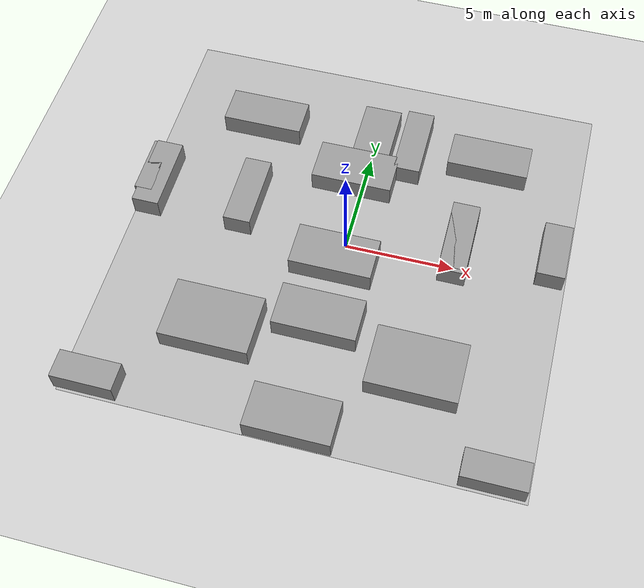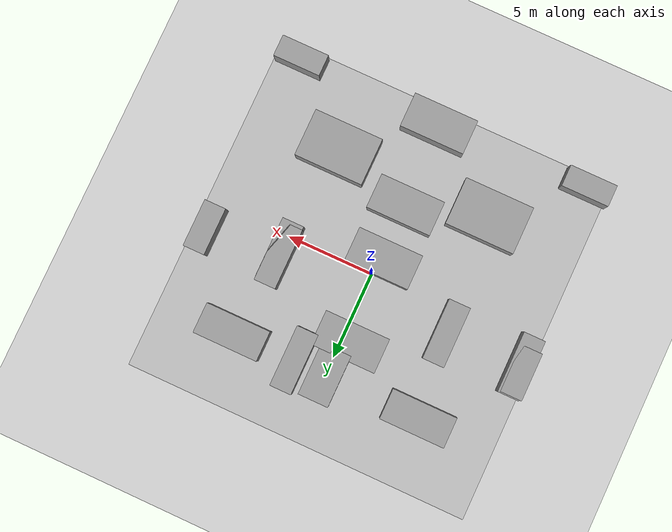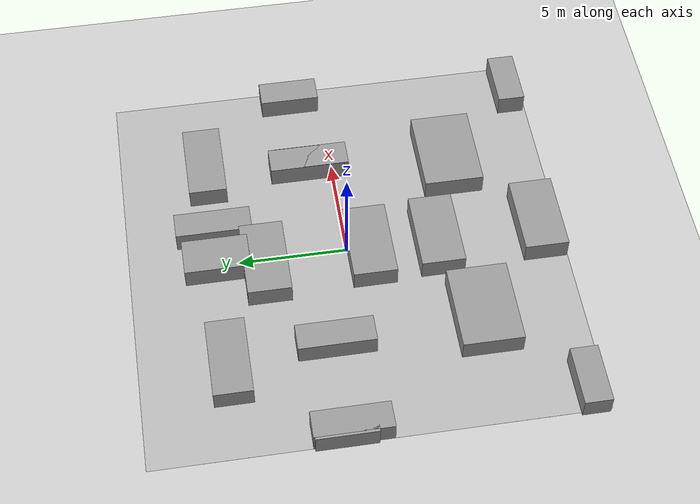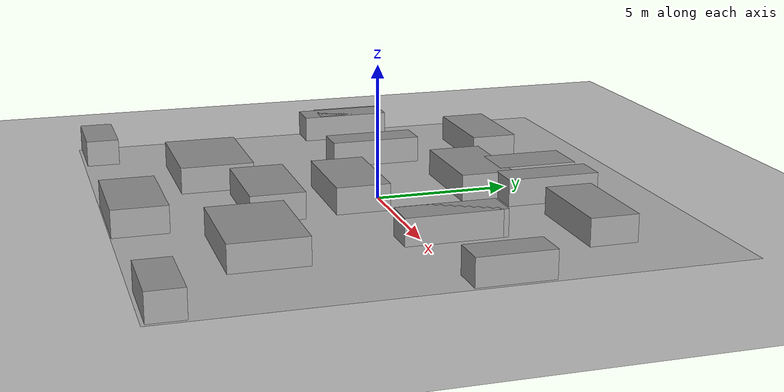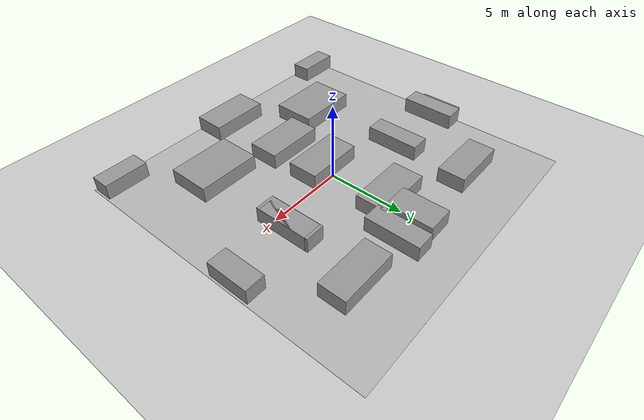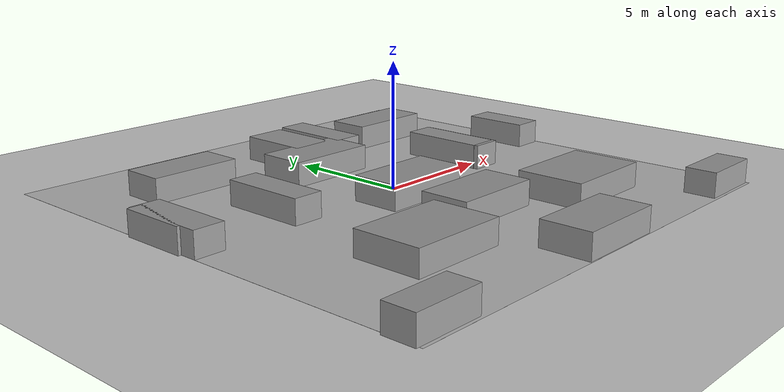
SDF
<sdf version="1.6">
 <world name="default">
  <scene><shadows>0</shadows><ambient>0.4 0.4 0.4 1</ambient><background>0.7 0.7 0.7 1</background></scene>
  <light name="sun" type="directional">
   <cast_shadows>0</cast_shadows>
   <pose>0 0 5 0 -0 0</pose>
   <diffuse>0.8 0.8 0.8 1</diffuse>
   <specular>0.1 0.1 0.1 1</specular>
   <attenuation>
    <range>1000</range>
    <constant>0.9</constant>
    <linear>0.01</linear>
    <quadratic>0.001</quadratic>
   </attenuation>
   <direction>-0.5 0.5 -1</direction>
  </light>
  <physics name="default_physics" default="0" type="ode">
   <max_step_size>0.001</max_step_size>
   <real_time_factor>1</real_time_factor>
   <real_time_update_rate>1000</real_time_update_rate>
  </physics>
  <scene><ambient>0.4 0.4 0.4 1</ambient><background>0.7 0.7 0.7 1</background><shadows>1</shadows></scene>
  <spherical_coordinates>
   <surface_model>EARTH_WGS84</surface_model>
   <latitude_deg>0</latitude_deg>
   <longitude_deg>0</longitude_deg>
   <elevation>0</elevation>
   <heading_deg>0</heading_deg>
  </spherical_coordinates>
  <model name="ground_plane">
   <static>1</static>
   <link name="link">
    <collision name="collision">
     <geometry><plane><normal>0 0 1</normal><size>100 100</size></plane></geometry>
     <surface><friction><ode><mu>1</mu><mu2>1</mu2></ode></friction></surface>
    </collision>
    <visual name="visual">
     <cast_shadows>0</cast_shadows>
     <geometry><plane><normal>0 0 1</normal><size>100 100</size></plane></geometry>
     <material>
      <script><uri>file://media/materials/scripts/gazebo.material</uri><name>Gazebo/Grey</name></script>
     </material>
    </visual>
    <velocity_decay><linear>0</linear><angular>0</angular></velocity_decay>
   </link>
  </model>
  <gravity>0 0 -9.8</gravity>
  <magnetic_field>6e-06 2.3e-05 -4.2e-05</magnetic_field>
  <atmosphere type="adiabatic"/>
  <model name="Floor_room">
   <link name="main">
    <pose>0 0 0.01 0 -0 0</pose>
    <collision name="main_Collision">
     <geometry><box><size>20 20 0.001</size></box></geometry>
     <surface>
      <friction>
       <ode><mu>100</mu><mu2>50</mu2></ode>
       <torsional>
        <coefficient>1</coefficient>
        <surface_radius>0.5</surface_radius>
        <use_patch_radius>0</use_patch_radius>
       </torsional>
      </friction>
     </surface>
    </collision>
    <visual name="main_Visual">
     <geometry><box><size>20 20 0.001</size></box></geometry>
     <material>
      <script>
       <uri>model://Floor_room/materials/scripts</uri>
       <uri>model://Floor_room/materials/textures</uri>
       <name>floor_room</name>
      </script>
     </material>
    </visual>
   </link>
   <static>1</static>
  </model>
  <model name="unit_box_0_0_0_0_0">
   <link name="link">
    <inertial>
     <mass>1</mass>
     <inertia>
      <ixx>0.166667</ixx>
      <ixy>0</ixy>
      <ixz>0</ixz>
      <iyy>0.166667</iyy>
      <iyz>0</iyz>
      <izz>0.166667</izz>
     </inertia>
    </inertial>
    <visual name="visual">
     <geometry><box><size>1.25 3.5 1</size></box></geometry>
     <material>
      <script><name>Gazebo/Grey</name><uri>file://media/materials/scripts/gazebo.material</uri></script>
      <ambient>0.3 0.3 0.3 1</ambient>
      <diffuse>0.7 0.7 0.7 1</diffuse>
      <specular>0.01 0.01 0.01 1</specular>
      <emissive>0 0 0 1</emissive>
      <shader type="vertex"><normal_map>__default__</normal_map></shader>
     </material>
    </visual>
    <collision name="collision">
     <geometry><box><size>1.25 3.5 1</size></box></geometry>
     <surface>
      <friction>
       <ode><mu>1</mu><mu2>1</mu2><fdir1>0 0 0</fdir1><slip1>0</slip1><slip2>0</slip2></ode>
       <torsional>
        <coefficient>1</coefficient>
        <patch_radius>0</patch_radius>
        <surface_radius>0</surface_radius>
        <use_patch_radius>1</use_patch_radius>
        <ode><slip>0</slip></ode>
       </torsional>
      </friction>
      <bounce><restitution_coefficient>0</restitution_coefficient><threshold>1e+06</threshold></bounce>
      <contact>
       <collide_without_contact>0</collide_without_contact>
       <collide_without_contact_bitmask>1</collide_without_contact_bitmask>
       <collide_bitmask>1</collide_bitmask>
       <ode>
        <soft_cfm>0</soft_cfm>
        <soft_erp>0.2</soft_erp>
        <kp>1e+13</kp>
        <kd>1</kd>
        <max_vel>0.01</max_vel>
        <min_depth>0</min_depth>
       </ode>
       <bullet>
        <split_impulse>1</split_impulse>
        <split_impulse_penetration_threshold>-0.01</split_impulse_penetration_threshold>
        <soft_cfm>0</soft_cfm>
        <soft_erp>0.2</soft_erp>
        <kp>1e+13</kp>
        <kd>1</kd>
       </bullet>
      </contact>
     </surface>
    </collision>
   </link>
   <static>1</static>
   <pose>-5 1.25 0.5105 0 -0 0</pose>
  </model>
  <model name="unit_box_0_0_0_0_0_clone_0">
   <link name="link">
    <inertial>
     <mass>1</mass>
     <inertia>
      <ixx>0.166667</ixx>
      <ixy>0</ixy>
      <ixz>0</ixz>
      <iyy>0.166667</iyy>
      <iyz>0</iyz>
      <izz>0.166667</izz>
     </inertia>
    </inertial>
    <visual name="visual">
     <geometry><box><size>1.75 3.75 1</size></box></geometry>
     <material>
      <script><name>Gazebo/Grey</name><uri>file://media/materials/scripts/gazebo.material</uri></script>
      <ambient>0.3 0.3 0.3 1</ambient>
      <diffuse>0.7 0.7 0.7 1</diffuse>
      <specular>0.01 0.01 0.01 1</specular>
      <emissive>0 0 0 1</emissive>
      <shader type="vertex"><normal_map>__default__</normal_map></shader>
     </material>
    </visual>
    <collision name="collision">
     <geometry><box><size>1.25 3.5 1</size></box></geometry>
     <surface>
      <friction>
       <ode><mu>1</mu><mu2>1</mu2><fdir1>0 0 0</fdir1><slip1>0</slip1><slip2>0</slip2></ode>
       <torsional>
        <coefficient>1</coefficient>
        <patch_radius>0</patch_radius>
        <surface_radius>0</surface_radius>
        <use_patch_radius>1</use_patch_radius>
        <ode><slip>0</slip></ode>
       </torsional>
      </friction>
      <bounce><restitution_coefficient>0</restitution_coefficient><threshold>1e+06</threshold></bounce>
      <contact>
       <collide_without_contact>0</collide_without_contact>
       <collide_without_contact_bitmask>1</collide_without_contact_bitmask>
       <collide_bitmask>1</collide_bitmask>
       <ode>
        <soft_cfm>0</soft_cfm>
        <soft_erp>0.2</soft_erp>
        <kp>1e+13</kp>
        <kd>1</kd>
        <max_vel>0.01</max_vel>
        <min_depth>0</min_depth>
       </ode>
       <bullet>
        <split_impulse>1</split_impulse>
        <split_impulse_penetration_threshold>-0.01</split_impulse_penetration_threshold>
        <soft_cfm>0</soft_cfm>
        <soft_erp>0.2</soft_erp>
        <kp>1e+13</kp>
        <kd>1</kd>
       </bullet>
      </contact>
     </surface>
    </collision>
   </link>
   <static>1</static>
   <pose>-5.5 6 0.5105 0 -0 1.5708</pose>
  </model>
  <model name="unit_box_0_0_0_0_0_clone">
   <link name="link">
    <inertial>
     <mass>1</mass>
     <inertia>
      <ixx>0.166667</ixx>
      <ixy>0</ixy>
      <ixz>0</ixz>
      <iyy>0.166667</iyy>
      <iyz>0</iyz>
      <izz>0.166667</izz>
     </inertia>
    </inertial>
    <visual name="visual">
     <geometry><box><size>1.25 3.5 1</size></box></geometry>
     <material>
      <script><name>Gazebo/Grey</name><uri>file://media/materials/scripts/gazebo.material</uri></script>
      <ambient>0.3 0.3 0.3 1</ambient>
      <diffuse>0.7 0.7 0.7 1</diffuse>
      <specular>0.01 0.01 0.01 1</specular>
      <emissive>0 0 0 1</emissive>
      <shader type="vertex"><normal_map>__default__</normal_map></shader>
     </material>
    </visual>
    <collision name="collision">
     <geometry><box><size>1.25 3.5 1</size></box></geometry>
     <surface>
      <friction>
       <ode><mu>1</mu><mu2>1</mu2><fdir1>0 0 0</fdir1><slip1>0</slip1><slip2>0</slip2></ode>
       <torsional>
        <coefficient>1</coefficient>
        <patch_radius>0</patch_radius>
        <surface_radius>0</surface_radius>
        <use_patch_radius>1</use_patch_radius>
        <ode><slip>0</slip></ode>
       </torsional>
      </friction>
      <bounce><restitution_coefficient>0</restitution_coefficient><threshold>1e+06</threshold></bounce>
      <contact>
       <collide_without_contact>0</collide_without_contact>
       <collide_without_contact_bitmask>1</collide_without_contact_bitmask>
       <collide_bitmask>1</collide_bitmask>
       <ode>
        <soft_cfm>0</soft_cfm>
        <soft_erp>0.2</soft_erp>
        <kp>1e+13</kp>
        <kd>1</kd>
        <max_vel>0.01</max_vel>
        <min_depth>0</min_depth>
       </ode>
       <bullet>
        <split_impulse>1</split_impulse>
        <split_impulse_penetration_threshold>-0.01</split_impulse_penetration_threshold>
        <soft_cfm>0</soft_cfm>
        <soft_erp>0.2</soft_erp>
        <kp>1e+13</kp>
        <kd>1</kd>
       </bullet>
      </contact>
     </surface>
    </collision>
   </link>
   <static>1</static>
   <pose>-9.37656 1.19117 0.5105 0 -0 0</pose>
  </model>
  <model name="unit_box_0_0_0_0_0_clone_1_0_0">
   <link name="link">
    <inertial>
     <mass>1</mass>
     <inertia>
      <ixx>0.166667</ixx>
      <ixy>0</ixy>
      <ixz>0</ixz>
      <iyy>0.166667</iyy>
      <iyz>0</iyz>
      <izz>0.166667</izz>
     </inertia>
    </inertial>
    <visual name="visual">
     <geometry><box><size>1.25 2.75 1</size></box></geometry>
     <material>
      <script><name>Gazebo/Grey</name><uri>file://media/materials/scripts/gazebo.material</uri></script>
      <ambient>0.3 0.3 0.3 1</ambient>
      <diffuse>0.7 0.7 0.7 1</diffuse>
      <specular>0.01 0.01 0.01 1</specular>
      <emissive>0 0 0 1</emissive>
      <shader type="vertex"><normal_map>__default__</normal_map></shader>
     </material>
    </visual>
    <collision name="collision">
     <geometry><box><size>1.25 2.75 1</size></box></geometry>
     <surface>
      <friction>
       <ode><mu>1</mu><mu2>1</mu2><fdir1>0 0 0</fdir1><slip1>0</slip1><slip2>0</slip2></ode>
       <torsional>
        <coefficient>1</coefficient>
        <patch_radius>0</patch_radius>
        <surface_radius>0</surface_radius>
        <use_patch_radius>1</use_patch_radius>
        <ode><slip>0</slip></ode>
       </torsional>
      </friction>
      <bounce><restitution_coefficient>0</restitution_coefficient><threshold>1e+06</threshold></bounce>
      <contact>
       <collide_without_contact>0</collide_without_contact>
       <collide_without_contact_bitmask>1</collide_without_contact_bitmask>
       <collide_bitmask>1</collide_bitmask>
       <ode>
        <soft_cfm>0</soft_cfm>
        <soft_erp>0.2</soft_erp>
        <kp>1e+13</kp>
        <kd>1</kd>
        <max_vel>0.01</max_vel>
        <min_depth>0</min_depth>
       </ode>
       <bullet>
        <split_impulse>1</split_impulse>
        <split_impulse_penetration_threshold>-0.01</split_impulse_penetration_threshold>
        <soft_cfm>0</soft_cfm>
        <soft_erp>0.2</soft_erp>
        <kp>1e+13</kp>
        <kd>1</kd>
       </bullet>
      </contact>
     </surface>
    </collision>
   </link>
   <static>1</static>
   <pose>-9.5 1.5 0.5105 0 -0 0</pose>
  </model>
  <model name="unit_box_0_0_0_0_0_clone_1">
   <link name="link">
    <inertial>
     <mass>1</mass>
     <inertia>
      <ixx>0.166667</ixx>
      <ixy>0</ixy>
      <ixz>0</ixz>
      <iyy>0.166667</iyy>
      <iyz>0</iyz>
      <izz>0.166667</izz>
     </inertia>
    </inertial>
    <visual name="visual">
     <geometry><box><size>1.25 3.5 1</size></box></geometry>
     <material>
      <script><name>Gazebo/Grey</name><uri>file://media/materials/scripts/gazebo.material</uri></script>
      <ambient>0.3 0.3 0.3 1</ambient>
      <diffuse>0.7 0.7 0.7 1</diffuse>
      <specular>0.01 0.01 0.01 1</specular>
      <emissive>0 0 0 1</emissive>
      <shader type="vertex"><normal_map>__default__</normal_map></shader>
     </material>
    </visual>
    <collision name="collision">
     <geometry><box><size>1.25 3.5 1</size></box></geometry>
     <surface>
      <friction>
       <ode><mu>1</mu><mu2>1</mu2><fdir1>0 0 0</fdir1><slip1>0</slip1><slip2>0</slip2></ode>
       <torsional>
        <coefficient>1</coefficient>
        <patch_radius>0</patch_radius>
        <surface_radius>0</surface_radius>
        <use_patch_radius>1</use_patch_radius>
        <ode><slip>0</slip></ode>
       </torsional>
      </friction>
      <bounce><restitution_coefficient>0</restitution_coefficient><threshold>1e+06</threshold></bounce>
      <contact>
       <collide_without_contact>0</collide_without_contact>
       <collide_without_contact_bitmask>1</collide_without_contact_bitmask>
       <collide_bitmask>1</collide_bitmask>
       <ode>
        <soft_cfm>0</soft_cfm>
        <soft_erp>0.2</soft_erp>
        <kp>1e+13</kp>
        <kd>1</kd>
        <max_vel>0.01</max_vel>
        <min_depth>0</min_depth>
       </ode>
       <bullet>
        <split_impulse>1</split_impulse>
        <split_impulse_penetration_threshold>-0.01</split_impulse_penetration_threshold>
        <soft_cfm>0</soft_cfm>
        <soft_erp>0.2</soft_erp>
        <kp>1e+13</kp>
        <kd>1</kd>
       </bullet>
      </contact>
     </surface>
    </collision>
   </link>
   <static>1</static>
   <pose>1.8244 5.96359 0.5105 0 -0 0</pose>
  </model>
  <model name="unit_box_0_0_0_0_0_clone_2_0">
   <link name="link">
    <inertial>
     <mass>1</mass>
     <inertia>
      <ixx>0.166667</ixx>
      <ixy>0</ixy>
      <ixz>0</ixz>
      <iyy>0.166667</iyy>
      <iyz>0</iyz>
      <izz>0.166667</izz>
     </inertia>
    </inertial>
    <visual name="visual">
     <geometry><box><size>1.75 3 1</size></box></geometry>
     <material>
      <script><name>Gazebo/Grey</name><uri>file://media/materials/scripts/gazebo.material</uri></script>
      <ambient>0.3 0.3 0.3 1</ambient>
      <diffuse>0.7 0.7 0.7 1</diffuse>
      <specular>0.01 0.01 0.01 1</specular>
      <emissive>0 0 0 1</emissive>
      <shader type="vertex"><normal_map>__default__</normal_map></shader>
     </material>
    </visual>
    <collision name="collision">
     <geometry><box><size>1.75 3 1</size></box></geometry>
     <surface>
      <friction>
       <ode><mu>1</mu><mu2>1</mu2><fdir1>0 0 0</fdir1><slip1>0</slip1><slip2>0</slip2></ode>
       <torsional>
        <coefficient>1</coefficient>
        <patch_radius>0</patch_radius>
        <surface_radius>0</surface_radius>
        <use_patch_radius>1</use_patch_radius>
        <ode><slip>0</slip></ode>
       </torsional>
      </friction>
      <bounce><restitution_coefficient>0</restitution_coefficient><threshold>1e+06</threshold></bounce>
      <contact>
       <collide_without_contact>0</collide_without_contact>
       <collide_without_contact_bitmask>1</collide_without_contact_bitmask>
       <collide_bitmask>1</collide_bitmask>
       <ode>
        <soft_cfm>0</soft_cfm>
        <soft_erp>0.2</soft_erp>
        <kp>1e+13</kp>
        <kd>1</kd>
        <max_vel>0.01</max_vel>
        <min_depth>0</min_depth>
       </ode>
       <bullet>
        <split_impulse>1</split_impulse>
        <split_impulse_penetration_threshold>-0.01</split_impulse_penetration_threshold>
        <soft_cfm>0</soft_cfm>
        <soft_erp>0.2</soft_erp>
        <kp>1e+13</kp>
        <kd>1</kd>
       </bullet>
      </contact>
     </surface>
    </collision>
   </link>
   <static>1</static>
   <pose>0 6 0.5105 0 -0 0</pose>
  </model>
  <model name="unit_box_0_0_0_0_0_clone_0_clone">
   <link name="link">
    <inertial>
     <mass>1</mass>
     <inertia>
      <ixx>0.166667</ixx>
      <ixy>0</ixy>
      <ixz>0</ixz>
      <iyy>0.166667</iyy>
      <iyz>0</iyz>
      <izz>0.166667</izz>
     </inertia>
    </inertial>
    <visual name="visual">
     <geometry><box><size>1.75 3.75 1</size></box></geometry>
     <material>
      <script><name>Gazebo/Grey</name><uri>file://media/materials/scripts/gazebo.material</uri></script>
      <ambient>0.3 0.3 0.3 1</ambient>
      <diffuse>0.7 0.7 0.7 1</diffuse>
      <specular>0.01 0.01 0.01 1</specular>
      <emissive>0 0 0 1</emissive>
      <shader type="vertex"><normal_map>__default__</normal_map></shader>
     </material>
    </visual>
    <collision name="collision">
     <geometry><box><size>1.25 3.5 1</size></box></geometry>
     <surface>
      <friction>
       <ode><mu>1</mu><mu2>1</mu2><fdir1>0 0 0</fdir1><slip1>0</slip1><slip2>0</slip2></ode>
       <torsional>
        <coefficient>1</coefficient>
        <patch_radius>0</patch_radius>
        <surface_radius>0</surface_radius>
        <use_patch_radius>1</use_patch_radius>
        <ode><slip>0</slip></ode>
       </torsional>
      </friction>
      <bounce><restitution_coefficient>0</restitution_coefficient><threshold>1e+06</threshold></bounce>
      <contact>
       <collide_without_contact>0</collide_without_contact>
       <collide_without_contact_bitmask>1</collide_without_contact_bitmask>
       <collide_bitmask>1</collide_bitmask>
       <ode>
        <soft_cfm>0</soft_cfm>
        <soft_erp>0.2</soft_erp>
        <kp>1e+13</kp>
        <kd>1</kd>
        <max_vel>0.01</max_vel>
        <min_depth>0</min_depth>
       </ode>
       <bullet>
        <split_impulse>1</split_impulse>
        <split_impulse_penetration_threshold>-0.01</split_impulse_penetration_threshold>
        <soft_cfm>0</soft_cfm>
        <soft_erp>0.2</soft_erp>
        <kp>1e+13</kp>
        <kd>1</kd>
       </bullet>
      </contact>
     </surface>
    </collision>
   </link>
   <static>1</static>
   <pose>5.5 6 0.5105 0 -0 1.5708</pose>
  </model>
  <model name="unit_box_0_0_0_0_0_clone_1_0_0_clone">
   <link name="link">
    <inertial>
     <mass>1</mass>
     <inertia>
      <ixx>0.166667</ixx>
      <ixy>0</ixy>
      <ixz>0</ixz>
      <iyy>0.166667</iyy>
      <iyz>0</iyz>
      <izz>0.166667</izz>
     </inertia>
    </inertial>
    <visual name="visual">
     <geometry><box><size>1.25 2.75 1</size></box></geometry>
     <material>
      <script><name>Gazebo/Grey</name><uri>file://media/materials/scripts/gazebo.material</uri></script>
      <ambient>0.3 0.3 0.3 1</ambient>
      <diffuse>0.7 0.7 0.7 1</diffuse>
      <specular>0.01 0.01 0.01 1</specular>
      <emissive>0 0 0 1</emissive>
      <shader type="vertex"><normal_map>__default__</normal_map></shader>
     </material>
    </visual>
    <collision name="collision">
     <geometry><box><size>1.25 2.75 1</size></box></geometry>
     <surface>
      <friction>
       <ode><mu>1</mu><mu2>1</mu2><fdir1>0 0 0</fdir1><slip1>0</slip1><slip2>0</slip2></ode>
       <torsional>
        <coefficient>1</coefficient>
        <patch_radius>0</patch_radius>
        <surface_radius>0</surface_radius>
        <use_patch_radius>1</use_patch_radius>
        <ode><slip>0</slip></ode>
       </torsional>
      </friction>
      <bounce><restitution_coefficient>0</restitution_coefficient><threshold>1e+06</threshold></bounce>
      <contact>
       <collide_without_contact>0</collide_without_contact>
       <collide_without_contact_bitmask>1</collide_without_contact_bitmask>
       <collide_bitmask>1</collide_bitmask>
       <ode>
        <soft_cfm>0</soft_cfm>
        <soft_erp>0.2</soft_erp>
        <kp>1e+13</kp>
        <kd>1</kd>
        <max_vel>0.01</max_vel>
        <min_depth>0</min_depth>
       </ode>
       <bullet>
        <split_impulse>1</split_impulse>
        <split_impulse_penetration_threshold>-0.01</split_impulse_penetration_threshold>
        <soft_cfm>0</soft_cfm>
        <soft_erp>0.2</soft_erp>
        <kp>1e+13</kp>
        <kd>1</kd>
       </bullet>
      </contact>
     </surface>
    </collision>
   </link>
   <static>1</static>
   <pose>9.25 1.5 0.5105 0 -0 0</pose>
  </model>
  <model name="unit_box_0_0_0_0_0_clone_2">
   <link name="link">
    <inertial>
     <mass>1</mass>
     <inertia>
      <ixx>0.166667</ixx>
      <ixy>0</ixy>
      <ixz>0</ixz>
      <iyy>0.166667</iyy>
      <iyz>0</iyz>
      <izz>0.166667</izz>
     </inertia>
    </inertial>
    <visual name="visual">
     <geometry><box><size>1.25 3.5 1</size></box></geometry>
     <material>
      <script><name>Gazebo/Grey</name><uri>file://media/materials/scripts/gazebo.material</uri></script>
      <ambient>0.3 0.3 0.3 1</ambient>
      <diffuse>0.7 0.7 0.7 1</diffuse>
      <specular>0.01 0.01 0.01 1</specular>
      <emissive>0 0 0 1</emissive>
      <shader type="vertex"><normal_map>__default__</normal_map></shader>
     </material>
    </visual>
    <collision name="collision">
     <geometry><box><size>1.25 3.5 1</size></box></geometry>
     <surface>
      <friction>
       <ode><mu>1</mu><mu2>1</mu2><fdir1>0 0 0</fdir1><slip1>0</slip1><slip2>0</slip2></ode>
       <torsional>
        <coefficient>1</coefficient>
        <patch_radius>0</patch_radius>
        <surface_radius>0</surface_radius>
        <use_patch_radius>1</use_patch_radius>
        <ode><slip>0</slip></ode>
       </torsional>
      </friction>
      <bounce><restitution_coefficient>0</restitution_coefficient><threshold>1e+06</threshold></bounce>
      <contact>
       <collide_without_contact>0</collide_without_contact>
       <collide_without_contact_bitmask>1</collide_without_contact_bitmask>
       <collide_bitmask>1</collide_bitmask>
       <ode>
        <soft_cfm>0</soft_cfm>
        <soft_erp>0.2</soft_erp>
        <kp>1e+13</kp>
        <kd>1</kd>
        <max_vel>0.01</max_vel>
        <min_depth>0</min_depth>
       </ode>
       <bullet>
        <split_impulse>1</split_impulse>
        <split_impulse_penetration_threshold>-0.01</split_impulse_penetration_threshold>
        <soft_cfm>0</soft_cfm>
        <soft_erp>0.2</soft_erp>
        <kp>1e+13</kp>
        <kd>1</kd>
       </bullet>
      </contact>
     </surface>
    </collision>
   </link>
   <static>1</static>
   <pose>4.986 1.1916 0.5105 0 -0 0</pose>
  </model>
  <model name="unit_box_0_0_0_0_0_clone_3">
   <link name="link">
    <inertial>
     <mass>1</mass>
     <inertia>
      <ixx>0.166667</ixx>
      <ixy>0</ixy>
      <ixz>0</ixz>
      <iyy>0.166667</iyy>
      <iyz>0</iyz>
      <izz>0.166667</izz>
     </inertia>
    </inertial>
    <visual name="visual">
     <geometry><box><size>1.25 3.5 1</size></box></geometry>
     <material>
      <script><name>Gazebo/Grey</name><uri>file://media/materials/scripts/gazebo.material</uri></script>
      <ambient>0.3 0.3 0.3 1</ambient>
      <diffuse>0.7 0.7 0.7 1</diffuse>
      <specular>0.01 0.01 0.01 1</specular>
      <emissive>0 0 0 1</emissive>
      <shader type="vertex"><normal_map>__default__</normal_map></shader>
     </material>
    </visual>
    <collision name="collision">
     <geometry><box><size>1.25 3.5 1</size></box></geometry>
     <surface>
      <friction>
       <ode><mu>1</mu><mu2>1</mu2><fdir1>0 0 0</fdir1><slip1>0</slip1><slip2>0</slip2></ode>
       <torsional>
        <coefficient>1</coefficient>
        <patch_radius>0</patch_radius>
        <surface_radius>0</surface_radius>
        <use_patch_radius>1</use_patch_radius>
        <ode><slip>0</slip></ode>
       </torsional>
      </friction>
      <bounce><restitution_coefficient>0</restitution_coefficient><threshold>1e+06</threshold></bounce>
      <contact>
       <collide_without_contact>0</collide_without_contact>
       <collide_without_contact_bitmask>1</collide_without_contact_bitmask>
       <collide_bitmask>1</collide_bitmask>
       <ode>
        <soft_cfm>0</soft_cfm>
        <soft_erp>0.2</soft_erp>
        <kp>1e+13</kp>
        <kd>1</kd>
        <max_vel>0.01</max_vel>
        <min_depth>0</min_depth>
       </ode>
       <bullet>
        <split_impulse>1</split_impulse>
        <split_impulse_penetration_threshold>-0.01</split_impulse_penetration_threshold>
        <soft_cfm>0</soft_cfm>
        <soft_erp>0.2</soft_erp>
        <kp>1e+13</kp>
        <kd>1</kd>
       </bullet>
      </contact>
     </surface>
    </collision>
   </link>
   <static>1</static>
   <pose>5 1 0.5105 0 -0 0</pose>
  </model>
  <model name="unit_box_0_0_0_0_0_clone_0_clone_clone_0">
   <link name="link">
    <inertial>
     <mass>1</mass>
     <inertia>
      <ixx>0.166667</ixx>
      <ixy>0</ixy>
      <ixz>0</ixz>
      <iyy>0.166667</iyy>
      <iyz>0</iyz>
      <izz>0.166667</izz>
     </inertia>
    </inertial>
    <visual name="visual">
     <geometry><box><size>2 3.75 1</size></box></geometry>
     <material>
      <script><name>Gazebo/Grey</name><uri>file://media/materials/scripts/gazebo.material</uri></script>
      <ambient>0.3 0.3 0.3 1</ambient>
      <diffuse>0.7 0.7 0.7 1</diffuse>
      <specular>0.01 0.01 0.01 1</specular>
      <emissive>0 0 0 1</emissive>
      <shader type="vertex"><normal_map>__default__</normal_map></shader>
     </material>
    </visual>
    <collision name="collision">
     <geometry><box><size>2 3.75 1</size></box></geometry>
     <surface>
      <friction>
       <ode><mu>1</mu><mu2>1</mu2><fdir1>0 0 0</fdir1><slip1>0</slip1><slip2>0</slip2></ode>
       <torsional>
        <coefficient>1</coefficient>
        <patch_radius>0</patch_radius>
        <surface_radius>0</surface_radius>
        <use_patch_radius>1</use_patch_radius>
        <ode><slip>0</slip></ode>
       </torsional>
      </friction>
      <bounce><restitution_coefficient>0</restitution_coefficient><threshold>1e+06</threshold></bounce>
      <contact>
       <collide_without_contact>0</collide_without_contact>
       <collide_without_contact_bitmask>1</collide_without_contact_bitmask>
       <collide_bitmask>1</collide_bitmask>
       <ode>
        <soft_cfm>0</soft_cfm>
        <soft_erp>0.2</soft_erp>
        <kp>1e+13</kp>
        <kd>1</kd>
        <max_vel>0.01</max_vel>
        <min_depth>0</min_depth>
       </ode>
       <bullet>
        <split_impulse>1</split_impulse>
        <split_impulse_penetration_threshold>-0.01</split_impulse_penetration_threshold>
        <soft_cfm>0</soft_cfm>
        <soft_erp>0.2</soft_erp>
        <kp>1e+13</kp>
        <kd>1</kd>
       </bullet>
      </contact>
     </surface>
    </collision>
   </link>
   <static>1</static>
   <pose>-0.25 -1 0.5105 0 -0 1.5708</pose>
  </model>
  <model name="unit_box_0_0_0_0_0_clone_0_clone_clone_0_clone_0_0">
   <link name="link">
    <inertial>
     <mass>1</mass>
     <inertia>
      <ixx>0.166667</ixx>
      <ixy>0</ixy>
      <ixz>0</ixz>
      <iyy>0.166667</iyy>
      <iyz>0</iyz>
      <izz>0.166667</izz>
     </inertia>
    </inertial>
    <visual name="visual">
     <geometry><box><size>2.75 4 1</size></box></geometry>
     <material>
      <script><name>Gazebo/Grey</name><uri>file://media/materials/scripts/gazebo.material</uri></script>
      <ambient>0.3 0.3 0.3 1</ambient>
      <diffuse>0.7 0.7 0.7 1</diffuse>
      <specular>0.01 0.01 0.01 1</specular>
      <emissive>0 0 0 1</emissive>
      <shader type="vertex"><normal_map>__default__</normal_map></shader>
     </material>
    </visual>
    <collision name="collision">
     <geometry><box><size>2.75 4 1</size></box></geometry>
     <surface>
      <friction>
       <ode><mu>1</mu><mu2>1</mu2><fdir1>0 0 0</fdir1><slip1>0</slip1><slip2>0</slip2></ode>
       <torsional>
        <coefficient>1</coefficient>
        <patch_radius>0</patch_radius>
        <surface_radius>0</surface_radius>
        <use_patch_radius>1</use_patch_radius>
        <ode><slip>0</slip></ode>
       </torsional>
      </friction>
      <bounce><restitution_coefficient>0</restitution_coefficient><threshold>1e+06</threshold></bounce>
      <contact>
       <collide_without_contact>0</collide_without_contact>
       <collide_without_contact_bitmask>1</collide_without_contact_bitmask>
       <collide_bitmask>1</collide_bitmask>
       <ode>
        <soft_cfm>0</soft_cfm>
        <soft_erp>0.2</soft_erp>
        <kp>1e+13</kp>
        <kd>1</kd>
        <max_vel>0.01</max_vel>
        <min_depth>0</min_depth>
       </ode>
       <bullet>
        <split_impulse>1</split_impulse>
        <split_impulse_penetration_threshold>-0.01</split_impulse_penetration_threshold>
        <soft_cfm>0</soft_cfm>
        <soft_erp>0.2</soft_erp>
        <kp>1e+13</kp>
        <kd>1</kd>
       </bullet>
      </contact>
     </surface>
    </collision>
   </link>
   <static>1</static>
   <pose>4.5 -5.5 0.5105 0 -0 1.5708</pose>
  </model>
  <model name="unit_box_0_0_0_0_0_clone_0_clone_clone_0_clone_0_0_clone">
   <link name="link">
    <inertial>
     <mass>1</mass>
     <inertia>
      <ixx>0.166667</ixx>
      <ixy>0</ixy>
      <ixz>0</ixz>
      <iyy>0.166667</iyy>
      <iyz>0</iyz>
      <izz>0.166667</izz>
     </inertia>
    </inertial>
    <visual name="visual">
     <geometry><box><size>2.75 4 1</size></box></geometry>
     <material>
      <script><name>Gazebo/Grey</name><uri>file://media/materials/scripts/gazebo.material</uri></script>
      <ambient>0.3 0.3 0.3 1</ambient>
      <diffuse>0.7 0.7 0.7 1</diffuse>
      <specular>0.01 0.01 0.01 1</specular>
      <emissive>0 0 0 1</emissive>
      <shader type="vertex"><normal_map>__default__</normal_map></shader>
     </material>
    </visual>
    <collision name="collision">
     <geometry><box><size>2.75 4 1</size></box></geometry>
     <surface>
      <friction>
       <ode><mu>1</mu><mu2>1</mu2><fdir1>0 0 0</fdir1><slip1>0</slip1><slip2>0</slip2></ode>
       <torsional>
        <coefficient>1</coefficient>
        <patch_radius>0</patch_radius>
        <surface_radius>0</surface_radius>
        <use_patch_radius>1</use_patch_radius>
        <ode><slip>0</slip></ode>
       </torsional>
      </friction>
      <bounce><restitution_coefficient>0</restitution_coefficient><threshold>1e+06</threshold></bounce>
      <contact>
       <collide_without_contact>0</collide_without_contact>
       <collide_without_contact_bitmask>1</collide_without_contact_bitmask>
       <collide_bitmask>1</collide_bitmask>
       <ode>
        <soft_cfm>0</soft_cfm>
        <soft_erp>0.2</soft_erp>
        <kp>1e+13</kp>
        <kd>1</kd>
        <max_vel>0.01</max_vel>
        <min_depth>0</min_depth>
       </ode>
       <bullet>
        <split_impulse>1</split_impulse>
        <split_impulse_penetration_threshold>-0.01</split_impulse_penetration_threshold>
        <soft_cfm>0</soft_cfm>
        <soft_erp>0.2</soft_erp>
        <kp>1e+13</kp>
        <kd>1</kd>
       </bullet>
      </contact>
     </surface>
    </collision>
   </link>
   <static>1</static>
   <pose>-4.5 -5.5 0.5105 0 -0 1.5708</pose>
  </model>
  <model name="unit_box_0_0_0_0_0_clone_1_0_0_clone_0">
   <link name="link">
    <inertial>
     <mass>1</mass>
     <inertia>
      <ixx>0.166667</ixx>
      <ixy>0</ixy>
      <ixz>0</ixz>
      <iyy>0.166667</iyy>
      <iyz>0</iyz>
      <izz>0.166667</izz>
     </inertia>
    </inertial>
    <visual name="visual">
     <geometry><box><size>1.25 2.75 1</size></box></geometry>
     <material>
      <script><name>Gazebo/Grey</name><uri>file://media/materials/scripts/gazebo.material</uri></script>
      <ambient>0.3 0.3 0.3 1</ambient>
      <diffuse>0.7 0.7 0.7 1</diffuse>
      <specular>0.01 0.01 0.01 1</specular>
      <emissive>0 0 0 1</emissive>
      <shader type="vertex"><normal_map>__default__</normal_map></shader>
     </material>
    </visual>
    <collision name="collision">
     <geometry><box><size>1.25 2.75 1</size></box></geometry>
     <surface>
      <friction>
       <ode><mu>1</mu><mu2>1</mu2><fdir1>0 0 0</fdir1><slip1>0</slip1><slip2>0</slip2></ode>
       <torsional>
        <coefficient>1</coefficient>
        <patch_radius>0</patch_radius>
        <surface_radius>0</surface_radius>
        <use_patch_radius>1</use_patch_radius>
        <ode><slip>0</slip></ode>
       </torsional>
      </friction>
      <bounce><restitution_coefficient>0</restitution_coefficient><threshold>1e+06</threshold></bounce>
      <contact>
       <collide_without_contact>0</collide_without_contact>
       <collide_without_contact_bitmask>1</collide_without_contact_bitmask>
       <collide_bitmask>1</collide_bitmask>
       <ode>
        <soft_cfm>0</soft_cfm>
        <soft_erp>0.2</soft_erp>
        <kp>1e+13</kp>
        <kd>1</kd>
        <max_vel>0.01</max_vel>
        <min_depth>0</min_depth>
       </ode>
       <bullet>
        <split_impulse>1</split_impulse>
        <split_impulse_penetration_threshold>-0.01</split_impulse_penetration_threshold>
        <soft_cfm>0</soft_cfm>
        <soft_erp>0.2</soft_erp>
        <kp>1e+13</kp>
        <kd>1</kd>
       </bullet>
      </contact>
     </surface>
    </collision>
   </link>
   <static>1</static>
   <pose>-8.75 -9.25 0.5105 0 -0 1.5708</pose>
  </model>
  <model name="unit_box_0_0_0_0_0_clone_1_0_0_clone_0_clone">
   <link name="link">
    <inertial>
     <mass>1</mass>
     <inertia>
      <ixx>0.166667</ixx>
      <ixy>0</ixy>
      <ixz>0</ixz>
      <iyy>0.166667</iyy>
      <iyz>0</iyz>
      <izz>0.166667</izz>
     </inertia>
    </inertial>
    <visual name="visual">
     <geometry><box><size>1.25 2.75 1</size></box></geometry>
     <material>
      <script><name>Gazebo/Grey</name><uri>file://media/materials/scripts/gazebo.material</uri></script>
      <ambient>0.3 0.3 0.3 1</ambient>
      <diffuse>0.7 0.7 0.7 1</diffuse>
      <specular>0.01 0.01 0.01 1</specular>
      <emissive>0 0 0 1</emissive>
      <shader type="vertex"><normal_map>__default__</normal_map></shader>
     </material>
    </visual>
    <collision name="collision">
     <geometry><box><size>1.25 2.75 1</size></box></geometry>
     <surface>
      <friction>
       <ode><mu>1</mu><mu2>1</mu2><fdir1>0 0 0</fdir1><slip1>0</slip1><slip2>0</slip2></ode>
       <torsional>
        <coefficient>1</coefficient>
        <patch_radius>0</patch_radius>
        <surface_radius>0</surface_radius>
        <use_patch_radius>1</use_patch_radius>
        <ode><slip>0</slip></ode>
       </torsional>
      </friction>
      <bounce><restitution_coefficient>0</restitution_coefficient><threshold>1e+06</threshold></bounce>
      <contact>
       <collide_without_contact>0</collide_without_contact>
       <collide_without_contact_bitmask>1</collide_without_contact_bitmask>
       <collide_bitmask>1</collide_bitmask>
       <ode>
        <soft_cfm>0</soft_cfm>
        <soft_erp>0.2</soft_erp>
        <kp>1e+13</kp>
        <kd>1</kd>
        <max_vel>0.01</max_vel>
        <min_depth>0</min_depth>
       </ode>
       <bullet>
        <split_impulse>1</split_impulse>
        <split_impulse_penetration_threshold>-0.01</split_impulse_penetration_threshold>
        <soft_cfm>0</soft_cfm>
        <soft_erp>0.2</soft_erp>
        <kp>1e+13</kp>
        <kd>1</kd>
       </bullet>
      </contact>
     </surface>
    </collision>
   </link>
   <static>1</static>
   <pose>8.5 -9.25 0.5105 0 -0 1.5708</pose>
  </model>
  <model name="unit_box_0_0_0_0_0_clone_0_clone_clone_0_clone">
   <link name="link">
    <inertial>
     <mass>1</mass>
     <inertia>
      <ixx>0.166667</ixx>
      <ixy>0</ixy>
      <ixz>0</ixz>
      <iyy>0.166667</iyy>
      <iyz>0</iyz>
      <izz>0.166667</izz>
     </inertia>
    </inertial>
    <visual name="visual">
     <geometry><box><size>2 3.75 1</size></box></geometry>
     <material>
      <script><name>Gazebo/Grey</name><uri>file://media/materials/scripts/gazebo.material</uri></script>
      <ambient>0.3 0.3 0.3 1</ambient>
      <diffuse>0.7 0.7 0.7 1</diffuse>
      <specular>0.01 0.01 0.01 1</specular>
      <emissive>0 0 0 1</emissive>
      <shader type="vertex"><normal_map>__default__</normal_map></shader>
     </material>
    </visual>
    <collision name="collision">
     <geometry><box><size>2 3.75 1</size></box></geometry>
     <surface>
      <friction>
       <ode><mu>1</mu><mu2>1</mu2><fdir1>0 0 0</fdir1><slip1>0</slip1><slip2>0</slip2></ode>
       <torsional>
        <coefficient>1</coefficient>
        <patch_radius>0</patch_radius>
        <surface_radius>0</surface_radius>
        <use_patch_radius>1</use_patch_radius>
        <ode><slip>0</slip></ode>
       </torsional>
      </friction>
      <bounce><restitution_coefficient>0</restitution_coefficient><threshold>1e+06</threshold></bounce>
      <contact>
       <collide_without_contact>0</collide_without_contact>
       <collide_without_contact_bitmask>1</collide_without_contact_bitmask>
       <collide_bitmask>1</collide_bitmask>
       <ode>
        <soft_cfm>0</soft_cfm>
        <soft_erp>0.2</soft_erp>
        <kp>1e+13</kp>
        <kd>1</kd>
        <max_vel>0.01</max_vel>
        <min_depth>0</min_depth>
       </ode>
       <bullet>
        <split_impulse>1</split_impulse>
        <split_impulse_penetration_threshold>-0.01</split_impulse_penetration_threshold>
        <soft_cfm>0</soft_cfm>
        <soft_erp>0.2</soft_erp>
        <kp>1e+13</kp>
        <kd>1</kd>
       </bullet>
      </contact>
     </surface>
    </collision>
   </link>
   <static>1</static>
   <pose>0.07297 -8.96319 0.5105 0 -0 1.5708</pose>
  </model>
  <model name="unit_box_0_0_0_0_0_clone_0_clone_clone_0_clone_0">
   <link name="link">
    <inertial>
     <mass>1</mass>
     <inertia>
      <ixx>0.166667</ixx>
      <ixy>0</ixy>
      <ixz>0</ixz>
      <iyy>0.166667</iyy>
      <iyz>0</iyz>
      <izz>0.166667</izz>
     </inertia>
    </inertial>
    <visual name="visual">
     <geometry><box><size>2 3.75 1</size></box></geometry>
     <material>
      <script><name>Gazebo/Grey</name><uri>file://media/materials/scripts/gazebo.material</uri></script>
      <ambient>0.3 0.3 0.3 1</ambient>
      <diffuse>0.7 0.7 0.7 1</diffuse>
      <specular>0.01 0.01 0.01 1</specular>
      <emissive>0 0 0 1</emissive>
      <shader type="vertex"><normal_map>__default__</normal_map></shader>
     </material>
    </visual>
    <collision name="collision">
     <geometry><box><size>2 3.75 1</size></box></geometry>
     <surface>
      <friction>
       <ode><mu>1</mu><mu2>1</mu2><fdir1>0 0 0</fdir1><slip1>0</slip1><slip2>0</slip2></ode>
       <torsional>
        <coefficient>1</coefficient>
        <patch_radius>0</patch_radius>
        <surface_radius>0</surface_radius>
        <use_patch_radius>1</use_patch_radius>
        <ode><slip>0</slip></ode>
       </torsional>
      </friction>
      <bounce><restitution_coefficient>0</restitution_coefficient><threshold>1e+06</threshold></bounce>
      <contact>
       <collide_without_contact>0</collide_without_contact>
       <collide_without_contact_bitmask>1</collide_without_contact_bitmask>
       <collide_bitmask>1</collide_bitmask>
       <ode>
        <soft_cfm>0</soft_cfm>
        <soft_erp>0.2</soft_erp>
        <kp>1e+13</kp>
        <kd>1</kd>
        <max_vel>0.01</max_vel>
        <min_depth>0</min_depth>
       </ode>
       <bullet>
        <split_impulse>1</split_impulse>
        <split_impulse_penetration_threshold>-0.01</split_impulse_penetration_threshold>
        <soft_cfm>0</soft_cfm>
        <soft_erp>0.2</soft_erp>
        <kp>1e+13</kp>
        <kd>1</kd>
       </bullet>
      </contact>
     </surface>
    </collision>
   </link>
   <static>1</static>
   <pose>-0.12235 -4.14499 0.5105 0 -0 1.5708</pose>
  </model>
  <model name="unit_box_0_0_0_0_0_clone_0_clone_clone_0_clone_1">
   <link name="link">
    <inertial>
     <mass>1</mass>
     <inertia>
      <ixx>0.166667</ixx>
      <ixy>0</ixy>
      <ixz>0</ixz>
      <iyy>0.166667</iyy>
      <iyz>0</iyz>
      <izz>0.166667</izz>
     </inertia>
    </inertial>
    <visual name="visual">
     <geometry><box><size>2 3.75 1</size></box></geometry>
     <material>
      <script><name>Gazebo/Grey</name><uri>file://media/materials/scripts/gazebo.material</uri></script>
      <ambient>0.3 0.3 0.3 1</ambient>
      <diffuse>0.7 0.7 0.7 1</diffuse>
      <specular>0.01 0.01 0.01 1</specular>
      <emissive>0 0 0 1</emissive>
      <shader type="vertex"><normal_map>__default__</normal_map></shader>
     </material>
    </visual>
    <collision name="collision">
     <geometry><box><size>2 3.75 1</size></box></geometry>
     <surface>
      <friction>
       <ode><mu>1</mu><mu2>1</mu2><fdir1>0 0 0</fdir1><slip1>0</slip1><slip2>0</slip2></ode>
       <torsional>
        <coefficient>1</coefficient>
        <patch_radius>0</patch_radius>
        <surface_radius>0</surface_radius>
        <use_patch_radius>1</use_patch_radius>
        <ode><slip>0</slip></ode>
       </torsional>
      </friction>
      <bounce><restitution_coefficient>0</restitution_coefficient><threshold>1e+06</threshold></bounce>
      <contact>
       <collide_without_contact>0</collide_without_contact>
       <collide_without_contact_bitmask>1</collide_without_contact_bitmask>
       <collide_bitmask>1</collide_bitmask>
       <ode>
        <soft_cfm>0</soft_cfm>
        <soft_erp>0.2</soft_erp>
        <kp>1e+13</kp>
        <kd>1</kd>
        <max_vel>0.01</max_vel>
        <min_depth>0</min_depth>
       </ode>
       <bullet>
        <split_impulse>1</split_impulse>
        <split_impulse_penetration_threshold>-0.01</split_impulse_penetration_threshold>
        <soft_cfm>0</soft_cfm>
        <soft_erp>0.2</soft_erp>
        <kp>1e+13</kp>
        <kd>1</kd>
       </bullet>
      </contact>
     </surface>
    </collision>
   </link>
   <static>1</static>
   <pose>-0.495302 3.82119 0.5105 0 -0 1.5708</pose>
  </model>
 </world>
</sdf>
